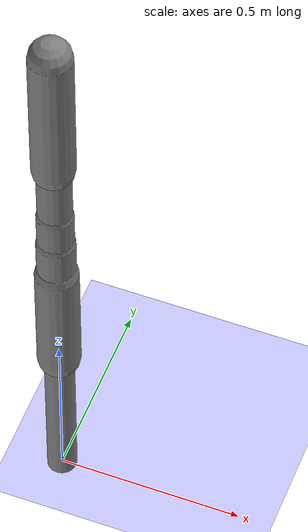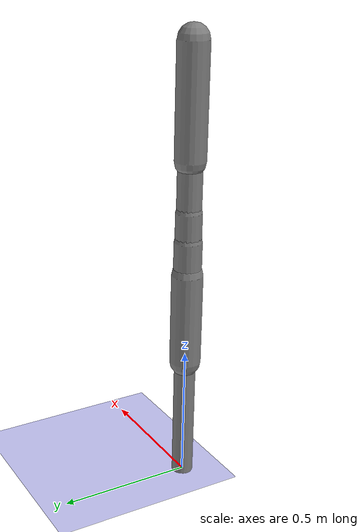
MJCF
<?xml version='1.0' encoding='UTF-8'?>
<mujoco model="robot_model">
  <worldbody>
    <light name="light" pos="0 -3 10" dir="0 0.5 -1" diffuse=".8 .8 .8" specular="0.1 0.1 0.1"/>
    <geom name="floor" type="plane" size="10.0 10.0 0.1" pos="0 0 0" rgba="0.8 0.8 1 1" contype="2" conaffinity="1"/>
    <body name="limb0" pos="0 0 0">
      <geom type="capsule" fromto="0 0 0 0 0 0.5705832614361906" size="0.04" density="581.8005684296455" contype="1" conaffinity="2"/>
      <site type="sphere" size="0.01" name="limb0_site0" pos="0 0 0.4720624433254927"/>
      <site type="sphere" size="0.01" name="limb0_site1" pos="0 0 0.47973333050554834"/>
      <freejoint name="limb0_root"/>
      <body name="limb1" pos="0 0 0.4720624433254927">
        <geom type="capsule" fromto="0 0 0 0 0 0.34784341191026547" size="0.05780096325172323" density="1003.386613734127" contype="1" conaffinity="2"/>
        <site type="sphere" size="0.01" name="limb1_site0" pos="0 0 0.33235869606856727"/>
        <site type="sphere" size="0.01" name="limb1_site1" pos="0 0 0.09085494210317346"/>
        <site type="sphere" size="0.01" name="limb1_site2" pos="0 0 0.06927704373718688"/>
        <body name="limb2" pos="0 0 0.33235869606856727">
          <geom type="capsule" fromto="0 0 0 0 0 0.5" size="0.045329815490319995" density="1017.2531489540214" contype="1" conaffinity="2"/>
          <site type="sphere" size="0.01" name="limb2_site0" pos="0 0 0.28431863432086774"/>
          <site type="sphere" size="0.01" name="limb2_site1" pos="0 0 0.4365154153176309"/>
          <site type="sphere" size="0.01" name="limb2_site2" pos="0 0 0.1982484344008178"/>
          <body name="limb3" pos="0 0 0.28431863432086774">
            <geom type="capsule" fromto="0 0 0 0 0 0.15237396979470333" size="0.02" density="886.7370032070218" contype="1" conaffinity="2"/>
            <joint name="joint_limb2_limb3_0" type="hinge" axis="0 1 0" range="-51.59203017742993 51.59203017742993" damping="5.0"/>
          </body>
          <body name="limb4" pos="0 0 0.4365154153176309">
            <geom type="capsule" fromto="0 0 0 0 0 0.4099091979905216" size="0.05692125839649371" density="1038.7184863029725" contype="1" conaffinity="2"/>
            <joint name="joint_limb2_limb4_0" type="hinge" axis="1 0 0" range="-30.498375955168243 30.498375955168243" damping="5.0"/>
          </body>
          <body name="limb5" pos="0 0 0.1982484344008178">
            <geom type="capsule" fromto="0 0 0 0 0 0.2915545876731404" size="0.041653011905912966" density="980.8720051175214" contype="1" conaffinity="2"/>
            <joint name="joint_limb2_limb5_0" type="hinge" axis="0 1 0" range="-107.14717313770412 107.14717313770412" damping="5.0"/>
          </body>
          <joint name="joint_limb1_limb2_0" type="hinge" axis="0 1 0" range="-57.66449740169123 57.66449740169123" damping="5.0"/>
        </body>
        <body name="limb6" pos="0 0 0.09085494210317346">
          <geom type="capsule" fromto="0 0 0 0 0 0.493241902580181" size="0.048337707539690744" density="929.4470981129116" contype="1" conaffinity="2"/>
          <joint name="joint_limb1_limb6_0" type="hinge" axis="0 0 1" range="-81.08974346532182 81.08974346532182" damping="5.0"/>
        </body>
        <body name="limb7" pos="0 0 0.06927704373718688">
          <geom type="capsule" fromto="0 0 0 0 0 0.44552404738132806" size="0.039556271122214166" density="1076.0934479971258" contype="1" conaffinity="2"/>
          <site type="sphere" size="0.01" name="limb7_site0" pos="0 0 0.23529327919964105"/>
          <body name="limb8" pos="0 0 0.23529327919964105">
            <geom type="capsule" fromto="0 0 0 0 0 0.16986396870629186" size="0.051375428870848665" density="410.9469482212125" contype="1" conaffinity="2"/>
            <joint name="joint_limb7_limb8_0" type="hinge" axis="0 1 0" range="-41.79162224515133 41.79162224515133" damping="5.0"/>
          </body>
          <joint name="joint_limb1_limb7_0" type="hinge" axis="0 0 1" range="-20.0 20.0" damping="5.0"/>
        </body>
        <joint name="joint_limb0_limb1_0" type="hinge" axis="0 1 0" range="-97.72934962860585 97.72934962860585" damping="5.0"/>
      </body>
      <body name="limb9" pos="0 0 0.47973333050554834">
        <geom type="capsule" fromto="0 0 0 0 0 0.16901349670638882" size="0.029773060920250092" density="867.1563718257595" contype="1" conaffinity="2"/>
        <joint name="joint_limb0_limb9_0" type="hinge" axis="0 1 0" range="-63.22844417036358 63.22844417036358" damping="5.0"/>
      </body>
    </body>
  </worldbody>
  <actuator>
    <position name="position_actuator_joint_limb0_limb1_0" joint="joint_limb0_limb1_0" gear="2.0" inheritrange="1" forcerange="-22.374671965647444 22.374671965647444" forcelimited="true" kp="100.0"/>
    <position name="position_actuator_joint_limb1_limb2_0" joint="joint_limb1_limb2_0" gear="1.6660657884047363" inheritrange="1" forcerange="-18.401183504925072 18.401183504925072" forcelimited="true" kp="100.0"/>
    <position name="position_actuator_joint_limb2_limb3_0" joint="joint_limb2_limb3_0" gear="1.8009346564222402" inheritrange="1" forcerange="-0.9975307982508884 0.9975307982508884" forcelimited="true" kp="100.0"/>
    <position name="position_actuator_joint_limb2_limb4_0" joint="joint_limb2_limb4_0" gear="1.3610683079112098" inheritrange="1" forcerange="-25.681950043152263 25.681950043152263" forcelimited="true" kp="100.0"/>
    <position name="position_actuator_joint_limb2_limb5_0" joint="joint_limb2_limb5_0" gear="0.7060054095369748" inheritrange="1" forcerange="-9.27832460712748 9.27832460712748" forcelimited="true" kp="100.0"/>
    <position name="position_actuator_joint_limb1_limb6_0" joint="joint_limb1_limb6_0" gear="0.5232975446209088" inheritrange="1" forcerange="-19.02441042259607 19.02441042259607" forcelimited="true" kp="100.0"/>
    <position name="position_actuator_joint_limb1_limb7_0" joint="joint_limb1_limb7_0" gear="1.6361186580392086" inheritrange="1" forcerange="-13.178366538205218 13.178366538205218" forcelimited="true" kp="100.0"/>
    <position name="position_actuator_joint_limb7_limb8_0" joint="joint_limb7_limb8_0" gear="1.9227033142358656" inheritrange="1" forcerange="-4.061235809083696 4.061235809083696" forcelimited="true" kp="100.0"/>
    <position name="position_actuator_joint_limb0_limb9_0" joint="joint_limb0_limb9_0" gear="1.068427433655958" inheritrange="1" forcerange="-2.5200515399804724 2.5200515399804724" forcelimited="true" kp="100.0"/>
  </actuator>
</mujoco>
